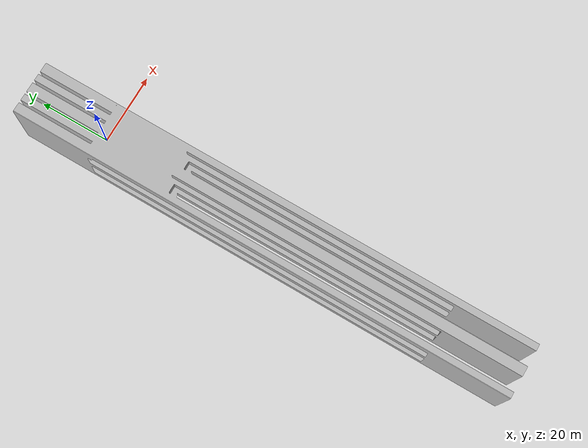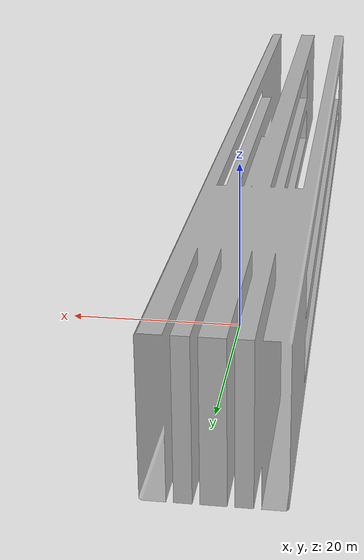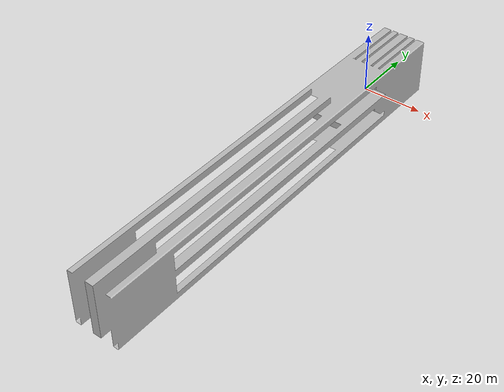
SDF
<?xml version="1.0" ?>
<sdf version="1.4">
	<model name="pallet480x1000x140mm">
		<static>true</static>
		<link name="link">
			<pose>0 0 0.06 0 0 0</pose>
			<collision name="collision">
				<geometry>
					<mesh>
						<uri>model://pallet2000x5000x140mm/mesh/pallet.dae</uri>
						<scale>1.95 100 1.59</scale>
					</mesh>
				</geometry>
			</collision>
			<visual name="visual">
				<geometry>
					<mesh>
						<uri>model://pallet2000x5000x140mm/mesh/pallet.dae</uri>
						<scale>1.95 100 1.59</scale>
					</mesh>
				</geometry>
			</visual>
		</link>
	</model>
</sdf>
